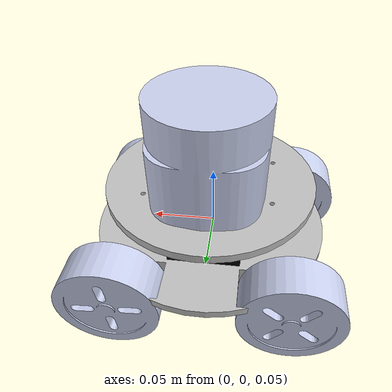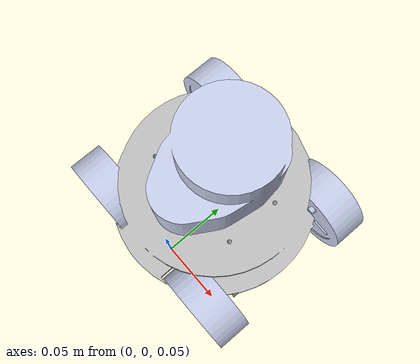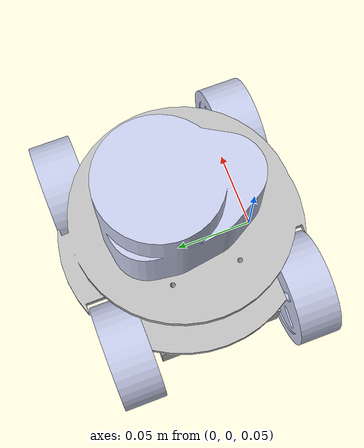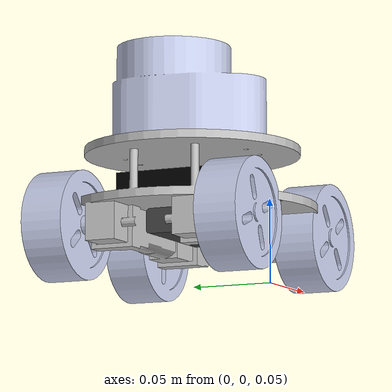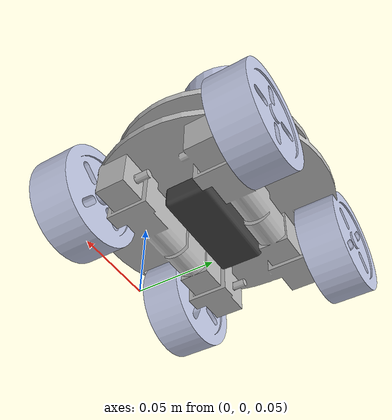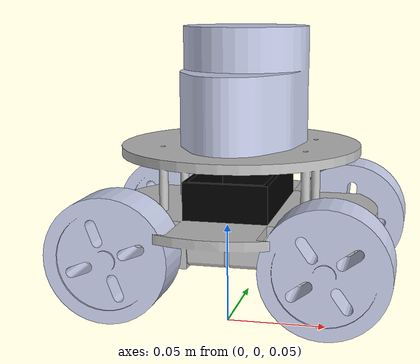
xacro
<?xml version="1.0" encoding="utf-8"?>
<robot
  xmlns:xacro="http://www.ros.org/wiki/xacro"
  name="robot">

  <!-- BASE LINK -->

  <link
    name="base_link">
  </link>

  <!-- BASE_FOOTPRINT LINK -->

  <link name="base_footprint">
  </link>

  <joint name="base_footprint_joint" type="fixed">
    <parent link="base_link"/>
    <child link="base_footprint"/>
    <origin xyz="0 0 0" rpy="0 0 0"/>
  </joint>

  <!-- CHASSIS LINK -->

  <link
    name="chassis_link">
    <inertial>
      <origin
        xyz="0.000204687581195852 0.00314875501574724 1.53572466782085E-17"
        rpy="0 0 0" />
      <mass
        value="0.253438557114572" />
      <inertia
        ixx="0.000230915983626971"
        ixy="-1.25922435715914E-21"
        ixz="-1.96530082780382E-20"
        iyy="0.000388552862570868"
        iyz="8.63727389926082E-21"
        izz="0.000171792964937591" />
    </inertial>
    <visual>
      <origin
        xyz="0 0 0"
        rpy="0 0 0" />
      <geometry>
        <mesh
          filename="package://rccar_lab/car_urdf/meshes/base_link.STL" />
      </geometry>
      <material
        name="">
        <color
          rgba="0.752941176470588 0.752941176470588 0.752941176470588 1" />
      </material>
    </visual>
    <collision>
      <origin
        xyz="0 0 0"
        rpy="0 0 0" />
      <geometry>
        <mesh
          filename="package://rccar_lab/car_urdf/meshes/base_link.STL" />
      </geometry>
    </collision>
  </link>
  <joint
    name="chassis_joint"
    type="fixed">
    <origin
      xyz="-0.00388152940223453 0.0491487550157473 0.0959822836251013"
      rpy="0 0 0" />
    <parent
      link="base_link" />
    <child
      link="chassis_link" />
    <axis
      xyz="0 0 0" />
  </joint>

  <link
    name="fr_wheel_link">
    <inertial>
      <origin
        xyz="6.93889390390723E-18 5.31629147485363E-05 1.04083408558608E-17"
        rpy="0 0 0" />
      <mass
        value="0.0746841951683647" />
      <inertia
        ixx="2.49513056185901E-05"
        ixy="-5.423278565198E-20"
        ixz="4.13590306276502E-22"
        iyy="4.21618272671167E-05"
        iyz="-9.47970035310487E-23"
        izz="2.49513056185901E-05" />
    </inertial>
    <visual>
      <origin
        xyz="0 0 0"
        rpy="0 0 0" />
      <geometry>
        <mesh
          filename="package://rccar_lab/car_urdf/meshes/fr_wheel_link.STL" />
      </geometry>
      <material
        name="">
        <color
          rgba="0.792156862745098 0.819607843137255 0.933333333333333 1" />
      </material>
    </visual>
    <collision>
      <origin
        xyz="0 0 0"
        rpy="0 0 0" />
      <geometry>
        <mesh
          filename="package://rccar_lab/car_urdf/meshes/fr_wheel_link.STL" />
      </geometry>
    </collision>
  </link>
  <joint
    name="fr_wheel_joint"
    type="continuous">
    <origin
      xyz="0.055 -0.05545 -0.0135"
      rpy="0 0 0" />
    <parent
      link="chassis_link" />
    <child
      link="fr_wheel_link" />
    <axis
      xyz="0 1 0" />
  </joint>
  <link
    name="fl_wheel_link">
    <inertial>
      <origin
        xyz="0 -5.31629147485432E-05 -5.20417042793042E-18"
        rpy="0 0 0" />
      <mass
        value="0.0746841951683647" />
      <inertia
        ixx="2.49513056185901E-05"
        ixy="-5.47674516841756E-20"
        ixz="-2.71418638493962E-22"
        iyy="4.21618272671167E-05"
        iyz="2.30183165982362E-22"
        izz="2.49513056185901E-05" />
    </inertial>
    <visual>
      <origin
        xyz="0 0 0"
        rpy="0 0 0" />
      <geometry>
        <mesh
          filename="package://rccar_lab/car_urdf/meshes/fl_wheel_link.STL" />
      </geometry>
      <material
        name="">
        <color
          rgba="0.792156862745098 0.819607843137255 0.933333333333333 1" />
      </material>
    </visual>
    <collision>
      <origin
        xyz="0 0 0"
        rpy="0 0 0" />
      <geometry>
        <mesh
          filename="package://rccar_lab/car_urdf/meshes/fl_wheel_link.STL" />
      </geometry>
    </collision>
  </link>
  <joint
    name="fl_wheel_joint"
    type="continuous">
    <origin
      xyz="0.055 0.05745 -0.0135"
      rpy="0 0 0" />
    <parent
      link="chassis_link" />
    <child
      link="fl_wheel_link" />
    <axis
      xyz="0 1 0" />
  </joint>
  <link
    name="br_wheel_link">
    <inertial>
      <origin
        xyz="0 5.31629147485363E-05 1.73472347597681E-18"
        rpy="0 0 0" />
      <mass
        value="0.0746841951683647" />
      <inertia
        ixx="2.49513056185901E-05"
        ixy="-6.50129727077473E-20"
        ixz="6.75315421967096E-22"
        iyy="4.21618272671167E-05"
        iyz="1.17926037236496E-21"
        izz="2.49513056185901E-05" />
    </inertial>
    <visual>
      <origin
        xyz="0 0 0"
        rpy="0 0 0" />
      <geometry>
        <mesh
          filename="package://rccar_lab/car_urdf/meshes/br_wheel_link.STL" />
      </geometry>
      <material
        name="">
        <color
          rgba="0.792156862745098 0.819607843137255 0.933333333333333 1" />
      </material>
    </visual>
    <collision>
      <origin
        xyz="0 0 0"
        rpy="0 0 0" />
      <geometry>
        <mesh
          filename="package://rccar_lab/car_urdf/meshes/br_wheel_link.STL" />
      </geometry>
    </collision>
  </link>
  <joint
    name="br_wheel_joint"
    type="continuous">
    <origin
      xyz="-0.055 -0.05545 -0.0135"
      rpy="0 0 0" />
    <parent
      link="chassis_link" />
    <child
      link="br_wheel_link" />
    <axis
      xyz="0 1 0" />
  </joint>
  <link
    name="bl_wheel_link">
    <inertial>
      <origin
        xyz="-6.93889390390723E-18 -5.31629147485502E-05 -1.73472347597681E-18"
        rpy="0 0 0" />
      <mass
        value="0.0746841951683648" />
      <inertia
        ixx="2.49513056185901E-05"
        ixy="-5.67907179160895E-20"
        ixz="-1.78845495721914E-21"
        iyy="4.21618272671167E-05"
        iyz="9.13026509813255E-22"
        izz="2.49513056185901E-05" />
    </inertial>
    <visual>
      <origin
        xyz="0 0 0"
        rpy="0 0 0" />
      <geometry>
        <mesh
          filename="package://rccar_lab/car_urdf/meshes/bl_wheel_link.STL" />
      </geometry>
      <material
        name="">
        <color
          rgba="0.792156862745098 0.819607843137255 0.933333333333333 1" />
      </material>
    </visual>
    <collision>
      <origin
        xyz="0 0 0"
        rpy="0 0 0" />
      <geometry>
        <mesh
          filename="package://rccar_lab/car_urdf/meshes/bl_wheel_link.STL" />
      </geometry>
    </collision>
  </link>
  <joint
    name="bl_wheel_joint"
    type="continuous">
    <origin
      xyz="-0.055 0.05545 -0.0135"
      rpy="0 0 0" />
    <parent
      link="chassis_link" />
    <child
      link="bl_wheel_link" />
    <axis
      xyz="0 1 0" />
  </joint>
  <link
    name="laser_frame">
    <inertial>
      <origin
        xyz="-1.11844852964053E-16 -0.00645097632173484 -0.0220370930302957"
        rpy="0 0 0" />
      <mass
        value="0.291987614489637" />
      <inertia
        ixx="0.0002404496804147"
        ixy="1.12972461375983E-19"
        ixz="-7.32140473318081E-21"
        iyy="0.000179322343491855"
        iyz="-1.7915823262772E-05"
        izz="0.00023562662350046" />
    </inertial>
    <visual>
      <origin
        xyz="0 0 0"
        rpy="0 0 0" />
      <geometry>
        <mesh
          filename="package://rccar_lab/car_urdf/meshes/laser_frame.STL" />
      </geometry>
      <material
        name="">
        <color
          rgba="0.792156862745098 0.819607843137255 0.933333333333333 1" />
      </material>
    </visual>
    <collision>
      <origin
        xyz="0 0 0"
        rpy="0 0 0" />
      <geometry>
        <mesh
          filename="package://rccar_lab/car_urdf/meshes/laser_frame.STL" />
      </geometry>
    </collision>
  </link>
  <joint
    name="laser_frame_joint"
    type="fixed">
    <origin
      xyz="0 0.0125 0.08893"
      rpy="0 0 0" />
    <parent
      link="chassis_link" />
    <child
      link="laser_frame" />
    <axis
      xyz="0 0 0" />
  </joint>

  <gazebo reference="laser_frame">
      <material>Gazebo/DarkGrey</material>
      <sensor name="laser" type="gpu_lidar">
        <pose> 0 0 0 0 0 0 </pose>
        <visualize>true</visualize>
        <update_rate>10</update_rate>
        <topic>scan</topic>
        <gz_frame_id>laser_frame</gz_frame_id>
        <lidar>
          <scan>
            <horizontal>
              <samples>360</samples>
              <resolution>1</resolution>
              <min_angle>-3.14</min_angle>
              <max_angle>3.14</max_angle>
            </horizontal>
          </scan>
          <range>
            <min>0.15</min>
            <max>12</max>
            <resolution>0.01</resolution>
          </range>

          <noise>
            <type>gaussian</type>
            <mean>0.0</mean>
            <stddev>0.001</stddev>
          </noise>

        </lidar>

        <always_on>1</always_on>
        <visualize>1</visualize>

      </sensor>

  </gazebo>

  <link
    name="ebox_link">
    <inertial>
      <origin
        xyz="1.32591217148186E-18 -7.42445710199543E-18 0.00665420516682762"
        rpy="0 0 0" />
      <mass
        value="0.0194293141652942" />
      <inertia
        ixx="1.44863163441746E-05"
        ixy="2.72159329107965E-20"
        ixz="1.70283301056841E-20"
        iyy="5.88923381835338E-06"
        iyz="8.0720709024853E-22"
        izz="1.88651943786396E-05" />
    </inertial>
    <visual>
      <origin
        xyz="0 0 0"
        rpy="0 0 0" />
      <geometry>
        <mesh
          filename="package://rccar_lab/car_urdf/meshes/ebox_link.STL" />
      </geometry>
      <material
        name="">
        <color
          rgba="0 0 0 1" />
      </material>
    </visual>
    <collision>
      <origin
        xyz="0 0 0"
        rpy="0 0 0" />
      <geometry>
        <mesh
          filename="package://rccar_lab/car_urdf/meshes/ebox_link.STL" />
      </geometry>
    </collision>
  </link>
  <joint
    name="ebox_joint"
    type="fixed">
    <origin
      xyz="0 0 0.0025"
      rpy="0 0 0" />
    <parent
      link="chassis_link" />
    <child
      link="ebox_link" />
    <axis
      xyz="0 0 0" />
  </joint>
  <link
    name="battery_link">
    <inertial>
      <origin
        xyz="-0.000123841648641815 4.21830740490866E-18 0.00748048339939821"
        rpy="0 0 0" />
      <mass
        value="0.0281697989109725" />
      <inertia
        ixx="2.44479179923402E-06"
        ixy="-2.98803775987149E-20"
        ixz="6.80855024106424E-11"
        iyy="1.06924152126357E-05"
        iyz="-2.10030338456889E-23"
        izz="1.21105909928422E-05" />
    </inertial>
    <visual>
      <origin
        xyz="0 0 0"
        rpy="0 0 0" />
      <geometry>
        <mesh
          filename="package://rccar_lab/car_urdf/meshes/battery_link.STL" />
      </geometry>
      <material
        name="">
        <color
          rgba="0.250980392156863 0.250980392156863 0.250980392156863 1" />
      </material>
    </visual>
    <collision>
      <origin
        xyz="0 0 0"
        rpy="0 0 0" />
      <geometry>
        <mesh
          filename="package://rccar_lab/car_urdf/meshes/battery_link.STL" />
      </geometry>
    </collision>
  </link>
  <joint
    name="battery_joint"
    type="fixed">
    <origin
      xyz="0 0 -0.0175"
      rpy="0 0 0" />
    <parent
      link="chassis_link" />
    <child
      link="battery_link" />
    <axis
      xyz="0 0 0" />
  </joint>
</robot>
